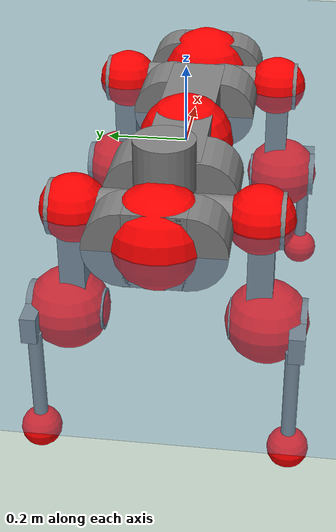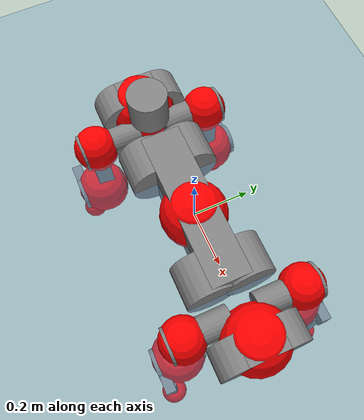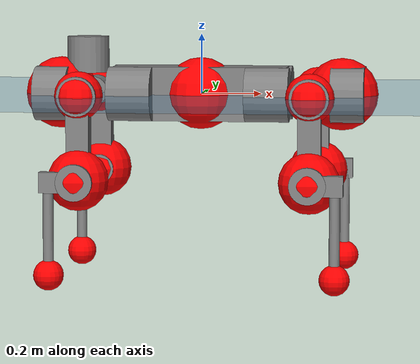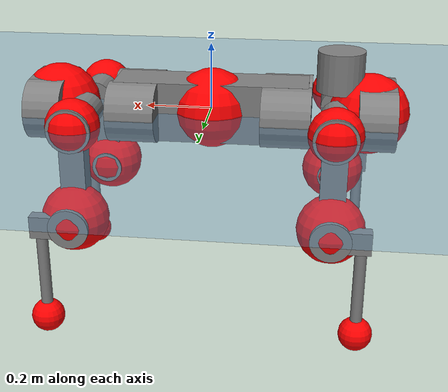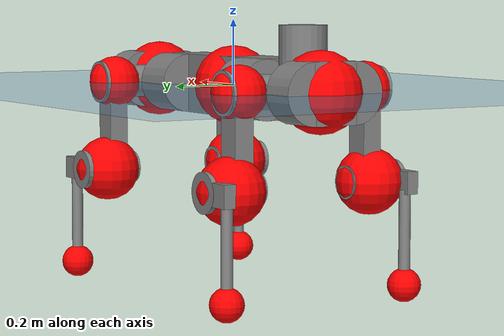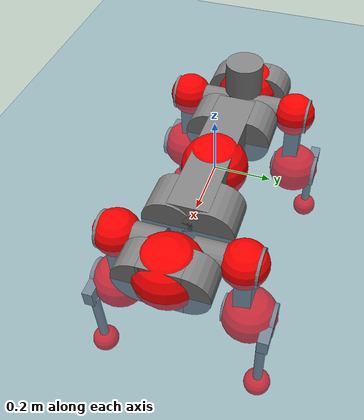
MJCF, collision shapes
<mujoco model="anymal_c">
  <compiler angle="radian" assetdir="assets" balanceinertia="true" inertiafromgeom="false"/>

  <option timestep="0.005" density="1.2" viscosity="2e-05"/>

  <size nkey="1"/>

  <visual>
    <quality shadowsize="8192"/>
    <map shadowclip="0.5"/>
  </visual>

  <default>
    <default class="/">
      <material specular="0" shininess="0.25"/>
      <geom contype="0" conaffinity="0" group="1" solref="-1000 -80"/>
      <site size="0.01 0.005 0.005" group="5"/>
      <general forcelimited="true" forcerange="-80 80" biastype="affine" gainprm="80" biasprm="0 -80 -2"/>
      <default class="anymal_c">
        <joint armature="0.01" damping="0.01" frictionloss="0.1"/>
        <default class="visual">
          <geom type="mesh" group="2"/>
          <default class="visual_zflip"/>
        </default>
        <default class="collision">
          <geom type="cylinder" group="3"/>
          <default class="foot">
            <geom size="0.03 0 0" type="sphere" condim="6" priority="1" friction="0.8 0.02 0.01" solimp="0.015 1 0.03"/>
          </default>
        </default>
      </default>
      <default class="reward_collision_sphere">
        <geom group="5" rgba="1 0 0 1"/>
      </default>
    </default>
  </default>

  <asset>
    <texture type="skybox" colorspace="auto" name="//unnamed_texture_0" builtin="gradient" rgb1="0.95 0.95 0.95" rgb2="0.95 0.95 0.95" width="100" height="600"/>
    <texture type="2d" colorspace="auto" name="texplane" builtin="checker" rgb1="0.345 0.575 0.748" rgb2="0.345 0.575 0.748" markrgb="1 1 1" width="512" height="512"/>
    <texture type="2d" colorspace="linear" name="base" file="base.png"/>
    <texture type="2d" colorspace="linear" name="top_shell" file="top_shell.png"/>
    <texture type="2d" colorspace="linear" name="bottom_shell" file="bottom_shell.png"/>
    <texture type="2d" colorspace="linear" name="remote" file="remote.png"/>
    <texture type="2d" colorspace="linear" name="hatch" file="hatch.png"/>
    <texture type="2d" colorspace="linear" name="handle" file="handle.png"/>
    <texture type="2d" colorspace="linear" name="face" file="face.png"/>
    <texture type="2d" colorspace="linear" name="battery" file="battery.png"/>
    <texture type="2d" colorspace="linear" name="lidar_cage" file="lidar_cage.png"/>
    <texture type="2d" colorspace="linear" name="depth_camera" file="depth_camera.png"/>
    <texture type="2d" colorspace="linear" name="wide_angle_camera" file="wide_angle_camera.png"/>
    <texture type="2d" colorspace="linear" name="lidar" file="lidar.png"/>
    <texture type="2d" colorspace="linear" name="drive" file="drive.png"/>
    <texture type="2d" colorspace="linear" name="hip_l" file="hip_l.png"/>
    <texture type="2d" colorspace="linear" name="shank_l" file="shank_l.png"/>
    <texture type="2d" colorspace="linear" name="foot" file="foot.png"/>
    <texture type="2d" colorspace="linear" name="thigh" file="thigh.png"/>
    <texture type="2d" colorspace="linear" name="shank_r" file="shank_r.png"/>
    <texture type="2d" colorspace="linear" name="hip_r" file="hip_r.png"/>
    <material name="MatPlane" class="/" texture="texplane" texuniform="true" texrepeat="2 2" specular="0.9" shininess="0.5"/>
    <material name="black_plastic" class="/" rgba="0.007 0.007 0.007 1"/>
    <material name="green" class="/" rgba="0.052 0.178 0.033 1"/>
    <material name="red" class="/" rgba="0.178 0.006 0.005 1"/>
    <material name="yellow" class="/" rgba="0.178 0.119 0.006 1"/>
    <material name="lwl" class="/" rgba="0.8 0.8 0.8 1"/>
    <material name="base" class="/" texture="base"/>
    <material name="top_shell" class="/" texture="top_shell"/>
    <material name="bottom_shell" class="/" texture="bottom_shell"/>
    <material name="hip_l" class="/" texture="hip_l"/>
    <material name="thigh" class="/" texture="thigh"/>
    <material name="shank_l" class="/" texture="shank_l"/>
    <material name="foot" class="/" texture="foot"/>
    <material name="hip_r" class="/" texture="hip_r"/>
    <material name="shank" class="/" texture="shank_r"/>
    <material name="hatch" class="/" texture="hatch"/>
    <material name="remote" class="/" texture="remote"/>
    <material name="handle" class="/" texture="handle"/>
    <material name="face" class="/" texture="face"/>
    <material name="depth_camera" class="/" texture="depth_camera"/>
    <material name="wide_angle_camera" class="/" texture="wide_angle_camera"/>
    <material name="battery" class="/" texture="battery"/>
    <material name="lidar_cage" class="/" texture="lidar_cage"/>
    <material name="lidar" class="/" texture="lidar"/>
    <material name="drive" class="/" texture="drive"/>
    <mesh name="base_0" class="/" file="base_0.obj"/>
    <mesh name="base_1" class="/" file="base_1.obj"/>
    <mesh name="base_2" class="/" file="base_2.obj"/>
    <mesh name="base_3" class="/" file="base_3.obj"/>
    <mesh name="base_4" class="/" file="base_4.obj"/>
    <mesh name="base_5" class="/" file="base_5.obj"/>
    <mesh name="top_shell" class="/" file="top_shell.obj"/>
    <mesh name="bottom_shell" class="/" file="bottom_shell.obj"/>
    <mesh name="remote" class="/" file="remote.obj"/>
    <mesh name="handle" class="/" file="handle.obj"/>
    <mesh name="face" class="/" file="face.obj"/>
    <mesh name="wide_angle_camera" class="/" file="wide_angle_camera.obj"/>
    <mesh name="depth_camera" class="/" file="depth_camera.obj"/>
    <mesh name="battery" class="/" file="battery.obj"/>
    <mesh name="lidar_cage" class="/" file="lidar_cage.obj"/>
    <mesh name="lidar" class="/" file="lidar.obj"/>
    <mesh name="drive" class="/" file="drive.obj"/>
    <mesh name="hip_l" class="/" file="hip_l.obj"/>
    <mesh name="thigh" class="/" file="thigh.obj"/>
    <mesh name="shank_l" class="/" file="shank_l.obj"/>
    <mesh name="foot" class="/" file="foot.obj"/>
    <mesh name="hip_r" class="/" file="hip_r.obj"/>
    <mesh name="hatch" class="/" file="hatch.obj"/>
    <mesh name="shank_r" class="/" file="shank_r.obj"/>
  </asset>

  <worldbody>
    <geom name="floor" class="/" size="100 100 0.125" type="plane" group="0" material="MatPlane"/>
    <light name="toplight_shadow" class="/" pos="0 0 5" dir="0.0990148 0.0990148 -0.990148" type="directional" ambient="0.04 0.04 0.04" diffuse="0.55 0.55 0.55" specular="0.12 0.12 0.12"/>
    <light name="toplight_fill" class="/" pos="0 0 5" dir="0.0990148 0.0990148 -0.990148" type="directional" castshadow="false" ambient="0.04 0.04 0.04" diffuse="0.3 0.3 0.3" specular="0.08 0.08 0.08"/>
    <body name="trunk" childclass="anymal_c" pos="-0.00234676 -0.000705618 0.00100289" quat="1 0.000599301 0.000255095 -0.000345454">
      <inertial pos="-1.97071e-05 -0.000482987 0.047348" quat="0.501632 0.499969 0.502388 0.495987" mass="19.2183" diaginertia="0.836491 0.615918 0.189131"/>
      <joint name="//unnamed_joint_0" type="free" armature="0" damping="0" frictionloss="0"/>
      <geom name="//unnamed_geom_1" class="visual" material="green" mesh="base_0"/>
      <geom name="//unnamed_geom_2" class="visual" material="yellow" mesh="base_1"/>
      <geom name="//unnamed_geom_3" class="visual" material="red" mesh="base_2"/>
      <geom name="//unnamed_geom_4" class="visual" material="black_plastic" mesh="base_3"/>
      <geom name="//unnamed_geom_5" class="visual" material="lwl" mesh="base_4"/>
      <geom name="//unnamed_geom_6" class="visual" material="base" mesh="base_5"/>
      <geom name="trunk_1" class="collision" size="0.291929 0.0704655 0.0905986" type="box"/>
      <geom name="trunk_2" class="collision" size="0.0905986 0.0729822" pos="0.229186 0.0698019 0" quat="0.707107 0 0.707107 0"/>
      <geom name="trunk_3" class="collision" size="0.0905986 0.0729822" pos="-0.229186 0.0698019 0" quat="0.707107 0 0.707107 0"/>
      <geom name="trunk_4" class="collision" size="0.0905986 0.0729822" pos="0.229186 -0.0698019 0" quat="0.707107 0 0.707107 0"/>
      <geom name="trunk_5" class="collision" size="0.0905986 0.0729822" pos="-0.229186 -0.0698019 0" quat="0.707107 0 0.707107 0"/>
      <geom name="//unnamed_geom_12" class="visual" material="top_shell" mesh="top_shell"/>
      <geom name="//unnamed_geom_13" class="visual" material="bottom_shell" mesh="bottom_shell"/>
      <geom name="//unnamed_geom_14" class="visual" material="remote" mesh="remote"/>
      <geom name="//unnamed_geom_15" class="visual" material="handle" mesh="handle"/>
      <geom name="//unnamed_geom_16" class="visual" pos="0.43677 0 0" quat="1 0 0 0" material="face" mesh="face"/>
      <geom name="trunk_6" class="collision" size="0.0553658 0.0704655 0.0905986" pos="0.494725 0 0" type="box"/>
      <geom name="//unnamed_geom_18" class="collision" size="0.0905986 0.0553658" pos="0.494725 0.0698019 0" quat="0.707107 0 0.707107 0"/>
      <geom name="//unnamed_geom_19" class="collision" size="0.0905986 0.0553658" pos="0.494725 -0.0698019 0" quat="0.707107 0 0.707107 0"/>
      <geom name="//unnamed_geom_20" class="visual" pos="0.486449 0 -0.0276529" quat="0.965926 0 0.258819 0" material="depth_camera" mesh="depth_camera"/>
      <geom name="//unnamed_geom_21" class="visual" pos="0.540562 0 0.0145068" material="wide_angle_camera" mesh="wide_angle_camera"/>
      <geom name="//unnamed_geom_22" class="visual_zflip" pos="-0.43677 0 0" quat="0 0 0 1" material="face" mesh="face"/>
      <geom name="trunk_7" class="collision" size="0.0553658 0.0704655 0.0905986" pos="-0.494725 0 0" quat="0 0 0 1" type="box"/>
      <geom name="//unnamed_geom_24" class="collision" size="0.0905986 0.0553658" pos="-0.494725 -0.0698019 0" quat="0 -0.707107 0 0.707107"/>
      <geom name="//unnamed_geom_25" class="collision" size="0.0905986 0.0553658" pos="-0.494725 0.0698019 0" quat="0 -0.707107 0 0.707107"/>
      <geom name="//unnamed_geom_26" class="visual" pos="-0.486449 0 -0.0276529" quat="0 -0.258819 0 0.965926" material="depth_camera" mesh="depth_camera"/>
      <geom name="//unnamed_geom_27" class="visual_zflip" pos="-0.540562 0 0.0145068" quat="0 0 0 1" material="wide_angle_camera" mesh="wide_angle_camera"/>
      <geom name="//unnamed_geom_28" class="visual" material="battery" mesh="battery"/>
      <geom name="//unnamed_geom_29" class="visual" pos="0 0.0754979 0.0287946" quat="0.683013 -0.183013 0.183013 0.683013" material="depth_camera" mesh="depth_camera"/>
      <geom name="//unnamed_geom_30" class="visual" pos="0 -0.0754979 0.0287946" quat="0.683013 0.183013 0.183013 -0.683013" material="depth_camera" mesh="depth_camera"/>
      <geom name="//unnamed_geom_31" class="visual" pos="-0.383557 0 0.0712256" quat="1 0 0 0" material="lidar_cage" mesh="lidar_cage"/>
      <geom name="trunk_8" class="collision" size="0.0704655 0.060399" pos="-0.383557 0 0.129369"/>
      <geom name="//unnamed_geom_33" class="visual" pos="-0.383557 -2.22198e-05 0.1378" quat="0.707107 0 0 -0.707107" material="lidar" mesh="lidar"/>
      <geom name="//unnamed_geom_34" class="visual" pos="0.316013 0.103696 4.84974e-10" quat="0.258819 0.965926 0 0" material="drive" mesh="drive"/>
      <geom name="//unnamed_geom_35" class="visual" pos="0.316013 -0.103696 -4.84974e-10" quat="0.258819 -0.965926 0 0" material="drive" mesh="drive"/>
      <geom name="//unnamed_geom_36" class="visual" pos="-0.316013 0.103696 -4.84974e-10" quat="0 0 0.965926 -0.258819" material="drive" mesh="drive"/>
      <geom name="//unnamed_geom_37" class="visual" pos="-0.316013 -0.103696 4.84974e-10" quat="0 0 -0.965926 -0.258819" material="drive" mesh="drive"/>
      <geom name="//unnamed_geom_38" class="visual" pos="0.122232 0 0.070741" quat="1 0 0 0" material="hatch" mesh="hatch"/>
      <geom name="//unnamed_geom_39" class="reward_collision_sphere" size="0.120798"/>
      <geom name="//unnamed_geom_40" class="reward_collision_sphere" size="0.120798" pos="0.474177 0 0"/>
      <geom name="//unnamed_geom_41" class="reward_collision_sphere" size="0.120798" pos="-0.474177 0 0"/>
      <site name="imu" pos="0.261848 0.00312305 0.0492139" size="0.0100665"/>
      <camera name="track" pos="0 -1.99434 0" quat="0.707107 0.707107 0 0" mode="trackcom"/>
      <camera name="ego_camera" pos="0.474177 0 -0.0387622" quat="-0.5 -0.5 0.5 0.5"/>
      <body name="LF_HIP" pos="0.317041 0.104226 -0.00085653" quat="0.258572 0.965991 -0.000915288 -0.000603596">
        <inertial pos="0.0572816 -0.0144455 -0.00751617" quat="-0.127215 0.710698 -0.133887 0.678822" mass="2.89154" diaginertia="0.0077823 0.00482627 0.002866"/>
        <joint name="LF_HAA" pos="0 0 0" axis="1 -0.000517152 0.000523671" range="-0.728415 0.452475" armature="0.0106716" damping="0.00764945" frictionloss="0.0959841"/>
        <geom name="//unnamed_geom_42" class="visual" pos="0 2.85289e-05 -4.68584e-06" quat="0.258819 -0.965926 0 0" material="hip_l" mesh="hip_l"/>
        <geom name="//unnamed_geom_43" class="visual" pos="0.0631182 -0.0757265 -0.0435128" quat="0.183013 -0.683013 0.683013 0.183013" material="drive" mesh="drive"/>
        <geom name="//unnamed_geom_44" class="collision" size="0.0503325 0.0704655" pos="0.0631182 -0.011926 -0.00669133" quat="-0.353553 -0.612372 0.612372 -0.353553"/>
        <body name="LF_THIGH" pos="0.06353 -0.073516 -0.0411699" quat="0.182943 -0.683034 0.683063 0.182817">
          <inertial pos="0.0350313 0.000307301 -0.235996" quat="0.993143 -0.00611004 -0.079026 0.0859315" mass="3.15723" diaginertia="0.038966 0.0291161 0.00361571"/>
          <joint name="LF_HFE" pos="0 0 0" axis="0.999999 -0.00126527 -0.000876788" stiffness="0.0137749" range="-3.17561 3.16021" armature="0.0106055" damping="0" frictionloss="0.0976838"/>
          <geom name="//unnamed_geom_45" class="visual" pos="0.00112526 1.77315e-06 0" quat="0.707107 0 0 -0.707107" material="thigh" mesh="thigh"/>
          <geom name="//unnamed_geom_46" class="collision" size="0.0654323 0.040266" pos="0.0421491 0 0" quat="0.5 0.5 -0.5 -0.5"/>
          <geom name="//unnamed_geom_47" class="collision" size="0.0377494 0.0301995 0.142254" pos="0.0316118 0 -0.136941" quat="0.707107 0 0 -0.707107" type="box"/>
          <geom name="//unnamed_geom_48" class="visual" pos="0.105689 0 -0.276181" quat="1 0 0 0" material="drive" mesh="drive"/>
          <geom name="//unnamed_geom_49" class="collision" size="0.0503325 0.0704655" pos="0.0319279 0 -0.276181" quat="0.707107 0 0.707107 0"/>
          <geom name="//unnamed_geom_50" class="reward_collision_sphere" size="0.0805321" pos="0.0263432 0 0"/>
          <body name="LF_SHANK" pos="0.105673 -0.000299525 -0.276906" quat="1 -1.48147e-05 -6.52829e-05 8.5239e-05">
            <inertial pos="0.00572439 -0.061455 -0.0792528" quat="0.993781 -0.107785 0.00349201 -0.0277464" mass="0.592969" diaginertia="0.0133645 0.00904072 0.000950534"/>
            <joint name="LF_KFE" pos="0 0 0" axis="0.999978 -0.000913855 0.00662278" range="-3.15127 3.10566" armature="0.0102606" damping="0.00917427" frictionloss="0.0993321"/>
            <geom name="//unnamed_geom_51" class="visual" pos="0.000366924 0.00195646 0" quat="0.707107 0 0 -0.707107" material="shank_l" mesh="shank_l"/>
            <geom name="LF_kfe_act" class="collision" size="0.060399 0.020133" pos="0.0210745 0 0" quat="0.5 0.5 -0.5 -0.5"/>
            <geom name="//unnamed_geom_53" class="collision" size="0.0578814 0.0339745 0.0191264" pos="0.0210745 -0.0573363 0" quat="0.5 0.5 -0.5 -0.5" type="box"/>
            <geom name="//unnamed_geom_54" class="visual" pos="0.013751 -0.0870706 -0.327512" quat="0.382683 0 0 -0.92388" material="foot" mesh="foot"/>
            <geom name="LF_calf" class="collision" size="0.0176164 0.142191" pos="0.0137511 -0.0877011 -0.163756" quat="0.707107 0 0 -0.707107"/>
            <geom name="LF_foot" class="foot" size="0.0301179" pos="0.0137511 -0.0877011 -0.305708" quat="0.707107 0 0 -0.707107"/>
            <geom name="//unnamed_geom_57" class="reward_collision_sphere" size="0.100665" pos="-0.0526863 0 0"/>
            <geom name="//unnamed_geom_58" class="reward_collision_sphere" size="0.0503325" pos="0.0137511 -0.0877011 -0.305708"/>
            <site name="LF_foot" class="foot" pos="0.0137511 -0.0877011 -0.305708" quat="0.707107 0 0 -0.707107" size="0.0100665"/>
          </body>
        </body>
      </body>
      <body name="RF_HIP" pos="0.316298 -0.102342 0.00151714" quat="0.259165 -0.965833 -0.000214542 0.000281081">
        <inertial pos="0.061244 0.0145892 -0.0080972" quat="0.136564 0.679105 0.127561 0.709856" mass="2.95167" diaginertia="0.00766306 0.00492116 0.00282677"/>
        <joint name="RF_HAA" pos="0 0 0" axis="0.999997 0.000726543 -0.00238962" range="-0.497294 0.716687" armature="0.00882649" damping="0.00913564" frictionloss="0.112674"/>
        <geom name="//unnamed_geom_59" class="visual" pos="0 -2.85286e-05 -4.68583e-06" quat="0.258819 0.965926 0 0" material="hip_r" mesh="hip_r"/>
        <geom name="//unnamed_geom_60" class="visual" pos="0.0631182 0.0757265 -0.0435128" quat="0.183013 0.683013 0.683013 -0.183013" material="drive" mesh="drive"/>
        <geom name="//unnamed_geom_61" class="collision" size="0.0503325 0.0704655" pos="0.0631182 0.011926 -0.00669133" quat="-0.353553 0.612372 0.612372 0.353553"/>
        <body name="RF_THIGH" pos="0.0635467 0.0722844 -0.0393739" quat="0.182261 0.683008 0.683373 -0.182433">
          <inertial pos="0.0317379 -0.00257651 -0.236816" quat="0.992745 -0.00522233 -0.0817776 0.0879966" mass="3.0734" diaginertia="0.0396813 0.0301797 0.00355767"/>
          <joint name="RF_HFE" pos="0 0 0" axis="0.999986 -0.00314388 0.0042839" stiffness="0.00383726" range="-3.12166 3.15902" armature="0.0101472" damping="0.010762" frictionloss="0.0961045"/>
          <geom name="//unnamed_geom_62" class="visual" pos="0.00112526 1.77315e-06 0" quat="0.707107 0 0 -0.707107" material="thigh" mesh="thigh"/>
          <geom name="//unnamed_geom_63" class="collision" size="0.0654323 0.040266" pos="0.0421491 0 0" quat="0.5 0.5 0.5 0.5"/>
          <geom name="//unnamed_geom_64" class="collision" size="0.0377494 0.0301995 0.142254" pos="0.0316118 0 -0.136941" quat="0.707107 0 0 0.707107" type="box"/>
          <geom name="//unnamed_geom_65" class="visual" pos="0.105689 0 -0.276181" quat="1 0 0 0" material="drive" mesh="drive"/>
          <geom name="//unnamed_geom_66" class="collision" size="0.0503325 0.0704655" pos="0.0319279 0 -0.276181" quat="0.707107 0 0.707107 0"/>
          <geom name="//unnamed_geom_67" class="reward_collision_sphere" size="0.0805321" pos="0.0263432 0 0"/>
          <body name="RF_SHANK" pos="0.105456 6.26794e-06 -0.275168" quat="1 4.1374e-05 -9.82957e-05 -8.38608e-07">
            <inertial pos="0.00558693 0.0610517 -0.077135" quat="0.992803 0.116902 -0.000646654 0.0259899" mass="0.605531" diaginertia="0.0137562 0.00918591 0.000978337"/>
            <joint name="RF_KFE" pos="0 0 0" axis="0.999939 0.00294216 -0.0106858" range="-3.14214 3.1279" armature="0.0103221" damping="0.00678902" frictionloss="0.0968365"/>
            <geom name="//unnamed_geom_68" class="visual" pos="0.000366922 -0.00195645 0" quat="0.707107 0 0 0.707107" material="shank" mesh="shank_r"/>
            <geom name="RF_kfe_act" class="collision" size="0.060399 0.020133" pos="0.0210745 0 0" quat="0.5 0.5 0.5 0.5"/>
            <geom name="//unnamed_geom_70" class="collision" size="0.0578814 0.0339745 0.0191264" pos="0.0210745 0.0573363 0" quat="0.5 0.5 0.5 0.5" type="box"/>
            <geom name="//unnamed_geom_71" class="visual" pos="0.0137512 0.0870706 -0.327512" quat="0.382683 0 0 0.92388" material="foot" mesh="foot"/>
            <geom name="RF_calf" class="collision" size="0.0176164 0.142191" pos="0.0137511 0.0877011 -0.163756" quat="0.707107 0 0 0.707107"/>
            <geom name="RF_foot" class="foot" size="0.0300983" pos="0.0137511 0.0877011 -0.305708" quat="0.707107 0 0 0.707107"/>
            <geom name="//unnamed_geom_74" class="reward_collision_sphere" size="0.100665" pos="-0.0526863 0 0"/>
            <geom name="//unnamed_geom_75" class="reward_collision_sphere" size="0.0503325" pos="0.0137511 0.0877011 -0.305708"/>
            <site name="RF_foot" class="foot" pos="0.0137511 0.0877011 -0.305708" quat="0.707107 0 0 0.707107" size="0.0100665"/>
          </body>
        </body>
      </body>
      <body name="LH_HIP" pos="-0.315684 0.102763 0.000721408" quat="0.000465704 -0.00101493 0.966101 -0.258163">
        <inertial pos="0.0622216 0.0156361 -0.00756961" quat="0.134863 0.679202 0.128228 0.709968" mass="2.8276" diaginertia="0.00763437 0.00492772 0.00285102"/>
        <joint name="LH_HAA" pos="0 0 0" axis="0.999998 -0.00180095 -7.21753e-05" range="-0.487685 0.726643" armature="0.0100188" damping="0.00816719" frictionloss="0.0956046"/>
        <geom name="//unnamed_geom_76" class="visual" pos="0 -2.85286e-05 -4.68583e-06" quat="-0.258819 -0.965926 0 0" material="hip_r" mesh="hip_r"/>
        <geom name="//unnamed_geom_77" class="visual" pos="0.0631182 0.0757265 -0.0435128" quat="0.183013 0.683013 0.683013 -0.183013" material="drive" mesh="drive"/>
        <geom name="//unnamed_geom_78" class="collision" size="0.0503325 0.0704655" pos="0.0631182 0.011926 -0.00669133" quat="-0.353553 0.612372 0.612372 0.353553"/>
        <body name="LH_THIGH" pos="0.0601124 0.0715269 -0.0401014" quat="0.182961 0.683293 0.682976 -0.182154">
          <inertial pos="0.0328154 4.93111e-05 -0.237857" quat="0.993791 -0.0042724 -0.0723625 0.0844048" mass="3.06802" diaginertia="0.0388554 0.0290055 0.0035305"/>
          <joint name="LH_HFE" pos="0 0 0" axis="0.99999 -0.00294689 -0.00341212" range="-3.14381 3.14692" armature="0.00984259" damping="0" frictionloss="0.105956"/>
          <geom name="//unnamed_geom_79" class="visual" pos="0.00112526 1.77315e-06 0" quat="0.707107 0 0 -0.707107" material="thigh" mesh="thigh"/>
          <geom name="//unnamed_geom_80" class="collision" size="0.0654323 0.040266" pos="0.0421491 0 0" quat="0.5 0.5 -0.5 -0.5"/>
          <geom name="//unnamed_geom_81" class="collision" size="0.0377494 0.0301995 0.142254" pos="0.0316118 0 -0.136941" quat="0.707107 0 0 -0.707107" type="box"/>
          <geom name="//unnamed_geom_82" class="visual" pos="0.105689 0 -0.276181" quat="1 0 0 0" material="drive" mesh="drive"/>
          <geom name="//unnamed_geom_83" class="collision" size="0.0503325 0.0704655" pos="0.0319279 0 -0.276181" quat="0.707107 0 0.707107 0"/>
          <geom name="//unnamed_geom_84" class="reward_collision_sphere" size="0.0805321" pos="0.0263432 0 0"/>
          <body name="LH_SHANK" pos="0.104338 -0.00057824 -0.276806" quat="1 -0.000109584 -0.000148673 5.09715e-05">
            <inertial pos="0.00586915 0.0609831 -0.0783225" quat="0.992919 0.115886 -0.000947616 0.0261146" mass="0.600787" diaginertia="0.0131636 0.00909603 0.000949071"/>
            <joint name="LH_KFE" pos="0 0 0" axis="0.999975 -0.00462295 0.0053392" range="-3.12536 3.14133" armature="0.010441" damping="0" frictionloss="0.101261"/>
            <geom name="//unnamed_geom_85" class="visual" pos="0.000366922 -0.00195645 0" quat="-0.707107 0 0 -0.707107" material="shank" mesh="shank_r"/>
            <geom name="LH_kfe_act" class="collision" size="0.060399 0.020133" pos="0.0210745 0 0" quat="0.5 0.5 -0.5 -0.5"/>
            <geom name="//unnamed_geom_87" class="collision" size="0.0578814 0.0339745 0.0191264" pos="0.0210745 0.0573363 0" quat="0.5 0.5 -0.5 -0.5" type="box"/>
            <geom name="//unnamed_geom_88" class="visual" pos="0.0137512 0.0870706 -0.327512" quat="-0.382683 0 0 -0.92388" material="foot" mesh="foot"/>
            <geom name="LH_calf" class="collision" size="0.0176164 0.142191" pos="0.0137511 0.0877011 -0.163756" quat="0.707107 0 0 -0.707107"/>
            <geom name="LH_foot" class="foot" size="0.0319551" pos="0.0137511 0.0877011 -0.305708" quat="0.707107 0 0 -0.707107"/>
            <geom name="//unnamed_geom_91" class="reward_collision_sphere" size="0.100665" pos="-0.0526863 0 0"/>
            <geom name="//unnamed_geom_92" class="reward_collision_sphere" size="0.0503325" pos="0.0137511 0.0877011 -0.305708"/>
            <site name="LH_foot" class="foot" pos="0.0137511 0.0877011 -0.305708" quat="0.707107 0 0 -0.707107" size="0.0100665"/>
          </body>
        </body>
      </body>
      <body name="RH_HIP" pos="-0.316717 -0.106076 0.00165809" quat="-0.000165982 7.5539e-05 -0.965839 -0.259143">
        <inertial pos="0.0597623 -0.0140339 -0.00828768" quat="-0.13568 0.704674 -0.138949 0.682436" mass="2.84805" diaginertia="0.00762145 0.00487825 0.00285559"/>
        <joint name="RH_HAA" pos="0 0 0" axis="1 -0.000298669 0.000350369" stiffness="0.00385839" range="-0.722008 0.484858" armature="0.0113126" damping="0.0228177" frictionloss="0.0914067"/>
        <geom name="//unnamed_geom_93" class="visual" pos="0 2.85289e-05 -4.68584e-06" quat="-0.258819 0.965926 0 0" material="hip_l" mesh="hip_l"/>
        <geom name="//unnamed_geom_94" class="visual" pos="0.0631182 -0.0757265 -0.0435128" quat="-0.183013 0.683013 -0.683013 -0.183013" material="drive" mesh="drive"/>
        <geom name="//unnamed_geom_95" class="collision" size="0.0503325 0.0704655" pos="0.0631182 -0.011926 -0.00669133" quat="0.353553 0.612372 -0.612372 0.353553"/>
        <body name="RH_THIGH" pos="0.0637117 -0.0724617 -0.0423952" quat="-0.183301 0.68296 -0.682887 -0.183389">
          <inertial pos="0.0328391 0.000441959 -0.237418" quat="0.993164 -0.0051804 -0.0806368 0.084233" mass="3.19908" diaginertia="0.0402706 0.0299035 0.00352789"/>
          <joint name="RH_HFE" pos="0 0 0" axis="0.999987 0.0049849 -0.000415596" range="-3.18225 3.14868" armature="0.00988396" damping="0.0104265" frictionloss="0.104875"/>
          <geom name="//unnamed_geom_96" class="visual" pos="0.00112526 1.77315e-06 0" quat="0.707107 0 0 -0.707107" material="thigh" mesh="thigh"/>
          <geom name="//unnamed_geom_97" class="collision" size="0.0654323 0.040266" pos="0.0421491 0 0" quat="0.5 0.5 0.5 0.5"/>
          <geom name="//unnamed_geom_98" class="collision" size="0.0377494 0.0301995 0.142254" pos="0.0316118 0 -0.136941" quat="0.707107 0 0 0.707107" type="box"/>
          <geom name="//unnamed_geom_99" class="visual" pos="0.105689 0 -0.276181" quat="1 0 0 0" material="drive" mesh="drive"/>
          <geom name="//unnamed_geom_100" class="collision" size="0.0503325 0.0704655" pos="0.0319279 0 -0.276181" quat="0.707107 0 0.707107 0"/>
          <geom name="//unnamed_geom_101" class="reward_collision_sphere" size="0.0805321" pos="0.0263432 0 0"/>
          <body name="RH_SHANK" pos="0.102755 0.00128145 -0.276436" quat="1 -0.000157746 0.000106828 6.86054e-05">
            <inertial pos="0.00837913 -0.0608841 -0.0784856" quat="0.992832 -0.116781 -0.00594118 -0.0247225" mass="0.600231" diaginertia="0.0127564 0.00873487 0.000933008"/>
            <joint name="RH_KFE" pos="0 0 0" axis="0.999995 -0.0020522 -0.00252373" range="-3.10156 3.18661" armature="0.00937016" damping="0.00786602" frictionloss="0.0961817"/>
            <geom name="//unnamed_geom_102" class="visual" pos="0.000366924 0.00195646 0" quat="0.707107 0 0 -0.707107" material="shank_l" mesh="shank_l"/>
            <geom name="RH_kfe_act" class="collision" size="0.060399 0.020133" pos="0.0210745 0 0" quat="0.5 0.5 0.5 0.5"/>
            <geom name="//unnamed_geom_104" class="collision" size="0.0578814 0.0339745 0.0191264" pos="0.0210745 -0.0573363 0" quat="0.5 0.5 0.5 0.5" type="box"/>
            <geom name="//unnamed_geom_105" class="visual" pos="0.013751 -0.0870706 -0.327512" quat="0.382683 0 0 -0.92388" material="foot" mesh="foot"/>
            <geom name="RH_calf" class="collision" size="0.0176164 0.142191" pos="0.0137511 -0.0877011 -0.163756" quat="0.707107 0 0 0.707107"/>
            <geom name="RH_foot" class="foot" size="0.0302217" pos="0.0137511 -0.0877011 -0.305708" quat="0.707107 0 0 0.707107"/>
            <geom name="//unnamed_geom_108" class="reward_collision_sphere" size="0.100665" pos="-0.0526863 0 0"/>
            <geom name="//unnamed_geom_109" class="reward_collision_sphere" size="0.0503325" pos="0.0137511 -0.0877011 -0.305708"/>
            <site name="RH_foot" class="foot" pos="0.0137511 -0.0877011 -0.305708" quat="0.707107 0 0 0.707107" size="0.0100665"/>
          </body>
        </body>
      </body>
    </body>
  </worldbody>

  <contact>
    <pair class="/" geom1="floor" geom2="LF_foot" name="//unnamed_contact_0"/>
    <pair class="/" geom1="floor" geom2="RF_foot" name="//unnamed_contact_1"/>
    <pair class="/" geom1="floor" geom2="LH_foot" name="//unnamed_contact_2"/>
    <pair class="/" geom1="floor" geom2="RH_foot" name="//unnamed_contact_3"/>
  </contact>

  <actuator>
    <general name="LF_HAA" class="/" joint="LF_HAA" forcerange="-81.6566 81.6566" gainprm="81.5359" biasprm="0 -81.5359 -1.88886"/>
    <general name="LF_HFE" class="/" joint="LF_HFE" forcerange="-82.3816 82.3816" gainprm="81.5359" biasprm="0 -81.5359 -1.88886"/>
    <general name="LF_KFE" class="/" joint="LF_KFE" forcerange="-81.1917 81.1917" gainprm="81.5359" biasprm="0 -81.5359 -1.88886"/>
    <general name="RF_HAA" class="/" joint="RF_HAA" forcerange="-88.8487 88.8487" gainprm="81.5359" biasprm="0 -81.5359 -1.88886"/>
    <general name="RF_HFE" class="/" joint="RF_HFE" forcerange="-82.0566 82.0566" gainprm="81.5359" biasprm="0 -81.5359 -1.88886"/>
    <general name="RF_KFE" class="/" joint="RF_KFE" forcerange="-77.7895 77.7895" gainprm="81.5359" biasprm="0 -81.5359 -1.88886"/>
    <general name="LH_HAA" class="/" joint="LH_HAA" forcerange="-79.6578 79.6578" gainprm="81.5359" biasprm="0 -81.5359 -1.88886"/>
    <general name="LH_HFE" class="/" joint="LH_HFE" forcerange="-79.4608 79.4608" gainprm="81.5359" biasprm="0 -81.5359 -1.88886"/>
    <general name="LH_KFE" class="/" joint="LH_KFE" forcerange="-83.1843 83.1843" gainprm="81.5359" biasprm="0 -81.5359 -1.88886"/>
    <general name="RH_HAA" class="/" joint="RH_HAA" forcerange="-81.3423 81.3423" gainprm="81.5359" biasprm="0 -81.5359 -1.88886"/>
    <general name="RH_HFE" class="/" joint="RH_HFE" forcerange="-83.5849 83.5849" gainprm="81.5359" biasprm="0 -81.5359 -1.88886"/>
    <general name="RH_KFE" class="/" joint="RH_KFE" forcerange="-87.1297 87.1297" gainprm="81.5359" biasprm="0 -81.5359 -1.88886"/>
  </actuator>

  <sensor>
    <gyro site="imu" name="imu_angular_velocity"/>
    <velocimeter site="imu" name="imu_linear_velocity"/>
    <framelinvel objtype="site" objname="LF_foot" name="LF_foot_global_linear_velocity"/>
    <framelinvel objtype="site" objname="RF_foot" name="RF_foot_global_linear_velocity"/>
    <framelinvel objtype="site" objname="LH_foot" name="LH_foot_global_linear_velocity"/>
    <framelinvel objtype="site" objname="RH_foot" name="RH_foot_global_linear_velocity"/>
  </sensor>

  <keyframe>
    <key name="home" qpos="0 0 0.55 1 0 0 0 0 0.4 -0.8 0 -0.4 0.8 0 -0.4 0.8 0 0.4 -0.8"/>
  </keyframe>
</mujoco>
